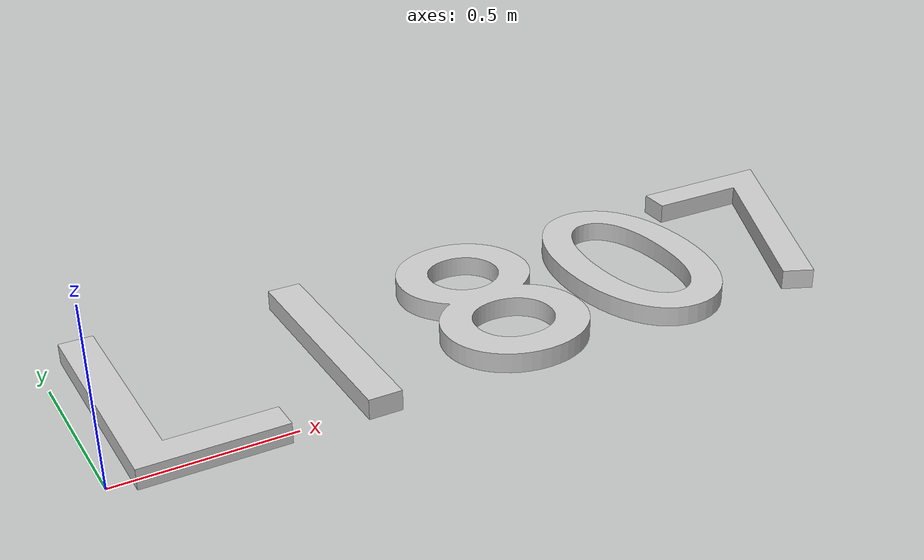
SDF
<?xml version='1.0'?>
    <sdf version='1.6'>
      <model name='L1807'>
        <link name='link'>
          <visual name='visual'>
            <geometry>
              <mesh>
                <uri>model://localros/text_3d_models/L1807/L1807.dae</uri>
              </mesh>
            </geometry>
          </visual>
        </link>
      </model>
    </sdf>
